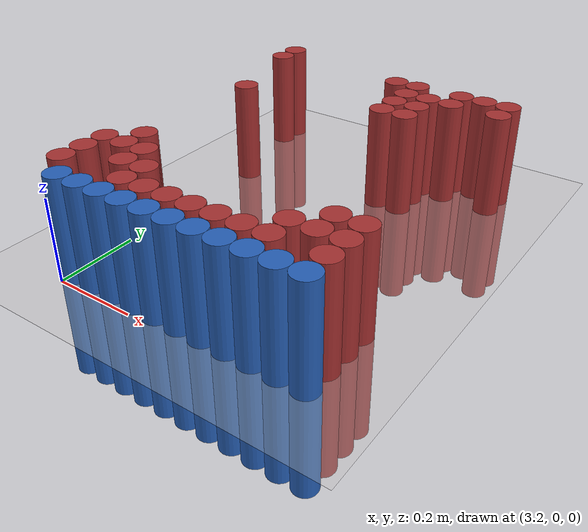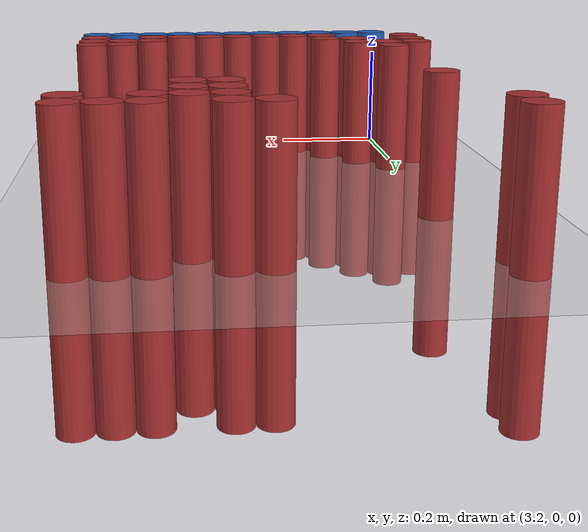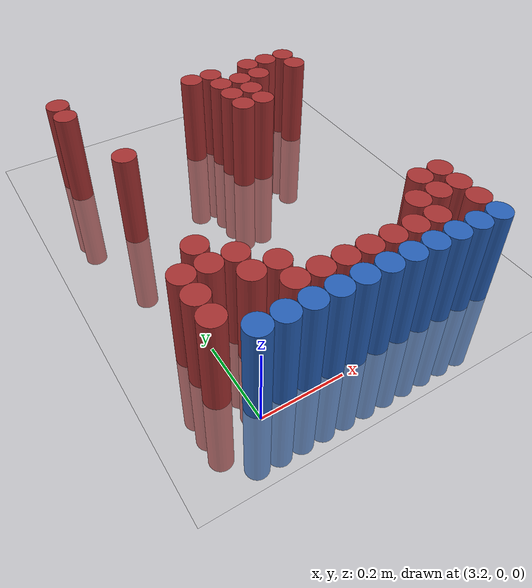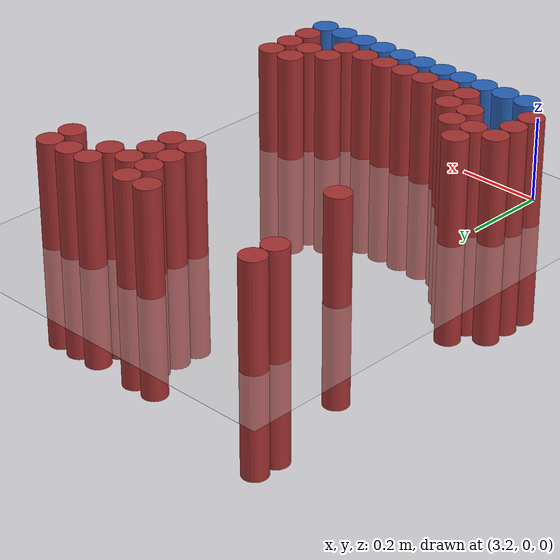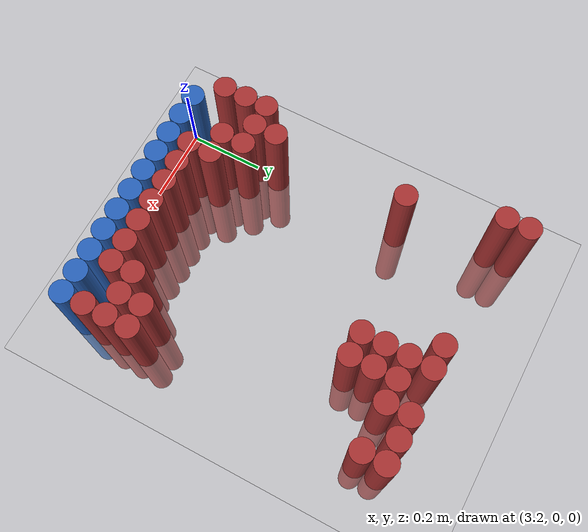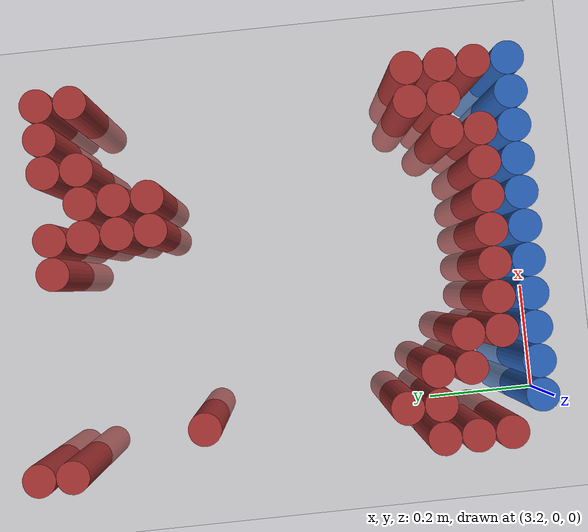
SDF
<sdf version="1.6">
 <world name="default">
  <model name="ground_plane">
   <static>1</static>
   <link name="link">
    <collision name="collision">
     <geometry><plane><normal>0 0 1</normal><size>100 100</size></plane></geometry>
     <surface><friction><ode><mu>100</mu><mu2>50</mu2></ode></friction></surface>
    </collision>
    <visual name="visual">
     <cast_shadows>0</cast_shadows>
     <geometry><plane><normal>0 0 1</normal><size>100 100</size></plane></geometry>
     <material>
      <script><uri>file://media/materials/scripts/gazebo.material</uri><name>Gazebo/Grey</name></script>
     </material>
    </visual>
   </link>
  </model>
  <model name="unit_cylinder_215">
   <static>1</static>
   <pose>3.150000 0.930000 0.000000 0.000000 0.000000 0.000000</pose>
   <link name="link">
    <inertial>
     <mass>1</mass>
     <inertia><ixx>0.145833</ixx><ixy>0</ixy><ixz>0</ixz><iyy>0.145833</iyy><iyz>0</iyz><izz>0.125</izz></inertia>
    </inertial>
    <collision name="collision">
     <geometry><cylinder><radius>0.030000</radius><length>0.5</length></cylinder></geometry>
    </collision>
    <visual name="visual">
     <geometry><cylinder><radius>0.030000</radius><length>0.5</length></cylinder></geometry>
     <material>
      <ambient>0.648000 0.192000 0.192000 1</ambient>
      <diffuse>0.648000 0.192000 0.192000 1</diffuse>
     </material>
     <material>
      <script><name>Gazebo/Grey</name><uri>file://media/materials/scripts/gazebo.material</uri></script>
     </material>
    </visual>
   </link>
  </model>
  <model name="unit_cylinder_225">
   <static>1</static>
   <pose>3.150000 0.870000 0.000000 0.000000 0.000000 0.000000</pose>
   <link name="link">
    <inertial>
     <mass>1</mass>
     <inertia><ixx>0.145833</ixx><ixy>0</ixy><ixz>0</ixz><iyy>0.145833</iyy><iyz>0</iyz><izz>0.125</izz></inertia>
    </inertial>
    <collision name="collision">
     <geometry><cylinder><radius>0.030000</radius><length>0.5</length></cylinder></geometry>
    </collision>
    <visual name="visual">
     <geometry><cylinder><radius>0.030000</radius><length>0.5</length></cylinder></geometry>
     <material>
      <ambient>0.648000 0.192000 0.192000 1</ambient>
      <diffuse>0.648000 0.192000 0.192000 1</diffuse>
     </material>
     <material>
      <script><name>Gazebo/Grey</name><uri>file://media/materials/scripts/gazebo.material</uri></script>
     </material>
    </visual>
   </link>
  </model>
  <model name="unit_cylinder_226">
   <static>1</static>
   <pose>3.510000 0.870000 0.000000 0.000000 0.000000 0.000000</pose>
   <link name="link">
    <inertial>
     <mass>1</mass>
     <inertia><ixx>0.145833</ixx><ixy>0</ixy><ixz>0</ixz><iyy>0.145833</iyy><iyz>0</iyz><izz>0.125</izz></inertia>
    </inertial>
    <collision name="collision">
     <geometry><cylinder><radius>0.030000</radius><length>0.5</length></cylinder></geometry>
    </collision>
    <visual name="visual">
     <geometry><cylinder><radius>0.030000</radius><length>0.5</length></cylinder></geometry>
     <material>
      <ambient>0.648000 0.192000 0.192000 1</ambient>
      <diffuse>0.648000 0.192000 0.192000 1</diffuse>
     </material>
     <material>
      <script><name>Gazebo/Grey</name><uri>file://media/materials/scripts/gazebo.material</uri></script>
     </material>
    </visual>
   </link>
  </model>
  <model name="unit_cylinder_227">
   <static>1</static>
   <pose>3.570000 0.870000 0.000000 0.000000 0.000000 0.000000</pose>
   <link name="link">
    <inertial>
     <mass>1</mass>
     <inertia><ixx>0.145833</ixx><ixy>0</ixy><ixz>0</ixz><iyy>0.145833</iyy><iyz>0</iyz><izz>0.125</izz></inertia>
    </inertial>
    <collision name="collision">
     <geometry><cylinder><radius>0.030000</radius><length>0.5</length></cylinder></geometry>
    </collision>
    <visual name="visual">
     <geometry><cylinder><radius>0.030000</radius><length>0.5</length></cylinder></geometry>
     <material>
      <ambient>0.648000 0.192000 0.192000 1</ambient>
      <diffuse>0.648000 0.192000 0.192000 1</diffuse>
     </material>
     <material>
      <script><name>Gazebo/Grey</name><uri>file://media/materials/scripts/gazebo.material</uri></script>
     </material>
    </visual>
   </link>
  </model>
  <model name="unit_cylinder_228">
   <static>1</static>
   <pose>3.690000 0.870000 0.000000 0.000000 0.000000 0.000000</pose>
   <link name="link">
    <inertial>
     <mass>1</mass>
     <inertia><ixx>0.145833</ixx><ixy>0</ixy><ixz>0</ixz><iyy>0.145833</iyy><iyz>0</iyz><izz>0.125</izz></inertia>
    </inertial>
    <collision name="collision">
     <geometry><cylinder><radius>0.030000</radius><length>0.5</length></cylinder></geometry>
    </collision>
    <visual name="visual">
     <geometry><cylinder><radius>0.030000</radius><length>0.5</length></cylinder></geometry>
     <material>
      <ambient>0.648000 0.192000 0.192000 1</ambient>
      <diffuse>0.648000 0.192000 0.192000 1</diffuse>
     </material>
     <material>
      <script><name>Gazebo/Grey</name><uri>file://media/materials/scripts/gazebo.material</uri></script>
     </material>
    </visual>
   </link>
  </model>
  <model name="unit_cylinder_229">
   <static>1</static>
   <pose>3.750000 0.870000 0.000000 0.000000 0.000000 0.000000</pose>
   <link name="link">
    <inertial>
     <mass>1</mass>
     <inertia><ixx>0.145833</ixx><ixy>0</ixy><ixz>0</ixz><iyy>0.145833</iyy><iyz>0</iyz><izz>0.125</izz></inertia>
    </inertial>
    <collision name="collision">
     <geometry><cylinder><radius>0.030000</radius><length>0.5</length></cylinder></geometry>
    </collision>
    <visual name="visual">
     <geometry><cylinder><radius>0.030000</radius><length>0.5</length></cylinder></geometry>
     <material>
      <ambient>0.648000 0.192000 0.192000 1</ambient>
      <diffuse>0.648000 0.192000 0.192000 1</diffuse>
     </material>
     <material>
      <script><name>Gazebo/Grey</name><uri>file://media/materials/scripts/gazebo.material</uri></script>
     </material>
    </visual>
   </link>
  </model>
  <model name="unit_cylinder_230">
   <static>1</static>
   <pose>3.810000 0.870000 0.000000 0.000000 0.000000 0.000000</pose>
   <link name="link">
    <inertial>
     <mass>1</mass>
     <inertia><ixx>0.145833</ixx><ixy>0</ixy><ixz>0</ixz><iyy>0.145833</iyy><iyz>0</iyz><izz>0.125</izz></inertia>
    </inertial>
    <collision name="collision">
     <geometry><cylinder><radius>0.030000</radius><length>0.5</length></cylinder></geometry>
    </collision>
    <visual name="visual">
     <geometry><cylinder><radius>0.030000</radius><length>0.5</length></cylinder></geometry>
     <material>
      <ambient>0.648000 0.192000 0.192000 1</ambient>
      <diffuse>0.648000 0.192000 0.192000 1</diffuse>
     </material>
     <material>
      <script><name>Gazebo/Grey</name><uri>file://media/materials/scripts/gazebo.material</uri></script>
     </material>
    </visual>
   </link>
  </model>
  <model name="unit_cylinder_240">
   <static>1</static>
   <pose>3.570000 0.810000 0.000000 0.000000 0.000000 0.000000</pose>
   <link name="link">
    <inertial>
     <mass>1</mass>
     <inertia><ixx>0.145833</ixx><ixy>0</ixy><ixz>0</ixz><iyy>0.145833</iyy><iyz>0</iyz><izz>0.125</izz></inertia>
    </inertial>
    <collision name="collision">
     <geometry><cylinder><radius>0.030000</radius><length>0.5</length></cylinder></geometry>
    </collision>
    <visual name="visual">
     <geometry><cylinder><radius>0.030000</radius><length>0.5</length></cylinder></geometry>
     <material>
      <ambient>0.648000 0.192000 0.192000 1</ambient>
      <diffuse>0.648000 0.192000 0.192000 1</diffuse>
     </material>
     <material>
      <script><name>Gazebo/Grey</name><uri>file://media/materials/scripts/gazebo.material</uri></script>
     </material>
    </visual>
   </link>
  </model>
  <model name="unit_cylinder_241">
   <static>1</static>
   <pose>3.630000 0.810000 0.000000 0.000000 0.000000 0.000000</pose>
   <link name="link">
    <inertial>
     <mass>1</mass>
     <inertia><ixx>0.145833</ixx><ixy>0</ixy><ixz>0</ixz><iyy>0.145833</iyy><iyz>0</iyz><izz>0.125</izz></inertia>
    </inertial>
    <collision name="collision">
     <geometry><cylinder><radius>0.030000</radius><length>0.5</length></cylinder></geometry>
    </collision>
    <visual name="visual">
     <geometry><cylinder><radius>0.030000</radius><length>0.5</length></cylinder></geometry>
     <material>
      <ambient>0.648000 0.192000 0.192000 1</ambient>
      <diffuse>0.648000 0.192000 0.192000 1</diffuse>
     </material>
     <material>
      <script><name>Gazebo/Grey</name><uri>file://media/materials/scripts/gazebo.material</uri></script>
     </material>
    </visual>
   </link>
  </model>
  <model name="unit_cylinder_242">
   <static>1</static>
   <pose>3.690000 0.810000 0.000000 0.000000 0.000000 0.000000</pose>
   <link name="link">
    <inertial>
     <mass>1</mass>
     <inertia><ixx>0.145833</ixx><ixy>0</ixy><ixz>0</ixz><iyy>0.145833</iyy><iyz>0</iyz><izz>0.125</izz></inertia>
    </inertial>
    <collision name="collision">
     <geometry><cylinder><radius>0.030000</radius><length>0.5</length></cylinder></geometry>
    </collision>
    <visual name="visual">
     <geometry><cylinder><radius>0.030000</radius><length>0.5</length></cylinder></geometry>
     <material>
      <ambient>0.648000 0.192000 0.192000 1</ambient>
      <diffuse>0.648000 0.192000 0.192000 1</diffuse>
     </material>
     <material>
      <script><name>Gazebo/Grey</name><uri>file://media/materials/scripts/gazebo.material</uri></script>
     </material>
    </visual>
   </link>
  </model>
  <model name="unit_cylinder_243">
   <static>1</static>
   <pose>3.810000 0.810000 0.000000 0.000000 0.000000 0.000000</pose>
   <link name="link">
    <inertial>
     <mass>1</mass>
     <inertia><ixx>0.145833</ixx><ixy>0</ixy><ixz>0</ixz><iyy>0.145833</iyy><iyz>0</iyz><izz>0.125</izz></inertia>
    </inertial>
    <collision name="collision">
     <geometry><cylinder><radius>0.030000</radius><length>0.5</length></cylinder></geometry>
    </collision>
    <visual name="visual">
     <geometry><cylinder><radius>0.030000</radius><length>0.5</length></cylinder></geometry>
     <material>
      <ambient>0.648000 0.192000 0.192000 1</ambient>
      <diffuse>0.648000 0.192000 0.192000 1</diffuse>
     </material>
     <material>
      <script><name>Gazebo/Grey</name><uri>file://media/materials/scripts/gazebo.material</uri></script>
     </material>
    </visual>
   </link>
  </model>
  <model name="unit_cylinder_248">
   <static>1</static>
   <pose>3.570000 0.750000 0.000000 0.000000 0.000000 0.000000</pose>
   <link name="link">
    <inertial>
     <mass>1</mass>
     <inertia><ixx>0.145833</ixx><ixy>0</ixy><ixz>0</ixz><iyy>0.145833</iyy><iyz>0</iyz><izz>0.125</izz></inertia>
    </inertial>
    <collision name="collision">
     <geometry><cylinder><radius>0.030000</radius><length>0.5</length></cylinder></geometry>
    </collision>
    <visual name="visual">
     <geometry><cylinder><radius>0.030000</radius><length>0.5</length></cylinder></geometry>
     <material>
      <ambient>0.648000 0.192000 0.192000 1</ambient>
      <diffuse>0.648000 0.192000 0.192000 1</diffuse>
     </material>
     <material>
      <script><name>Gazebo/Grey</name><uri>file://media/materials/scripts/gazebo.material</uri></script>
     </material>
    </visual>
   </link>
  </model>
  <model name="unit_cylinder_249">
   <static>1</static>
   <pose>3.630000 0.750000 0.000000 0.000000 0.000000 0.000000</pose>
   <link name="link">
    <inertial>
     <mass>1</mass>
     <inertia><ixx>0.145833</ixx><ixy>0</ixy><ixz>0</ixz><iyy>0.145833</iyy><iyz>0</iyz><izz>0.125</izz></inertia>
    </inertial>
    <collision name="collision">
     <geometry><cylinder><radius>0.030000</radius><length>0.5</length></cylinder></geometry>
    </collision>
    <visual name="visual">
     <geometry><cylinder><radius>0.030000</radius><length>0.5</length></cylinder></geometry>
     <material>
      <ambient>0.648000 0.192000 0.192000 1</ambient>
      <diffuse>0.648000 0.192000 0.192000 1</diffuse>
     </material>
     <material>
      <script><name>Gazebo/Grey</name><uri>file://media/materials/scripts/gazebo.material</uri></script>
     </material>
    </visual>
   </link>
  </model>
  <model name="unit_cylinder_256">
   <static>1</static>
   <pose>3.570000 0.690000 0.000000 0.000000 0.000000 0.000000</pose>
   <link name="link">
    <inertial>
     <mass>1</mass>
     <inertia><ixx>0.145833</ixx><ixy>0</ixy><ixz>0</ixz><iyy>0.145833</iyy><iyz>0</iyz><izz>0.125</izz></inertia>
    </inertial>
    <collision name="collision">
     <geometry><cylinder><radius>0.030000</radius><length>0.5</length></cylinder></geometry>
    </collision>
    <visual name="visual">
     <geometry><cylinder><radius>0.030000</radius><length>0.5</length></cylinder></geometry>
     <material>
      <ambient>0.648000 0.192000 0.192000 1</ambient>
      <diffuse>0.648000 0.192000 0.192000 1</diffuse>
     </material>
     <material>
      <script><name>Gazebo/Grey</name><uri>file://media/materials/scripts/gazebo.material</uri></script>
     </material>
    </visual>
   </link>
  </model>
  <model name="unit_cylinder_257">
   <static>1</static>
   <pose>3.630000 0.690000 0.000000 0.000000 0.000000 0.000000</pose>
   <link name="link">
    <inertial>
     <mass>1</mass>
     <inertia><ixx>0.145833</ixx><ixy>0</ixy><ixz>0</ixz><iyy>0.145833</iyy><iyz>0</iyz><izz>0.125</izz></inertia>
    </inertial>
    <collision name="collision">
     <geometry><cylinder><radius>0.030000</radius><length>0.5</length></cylinder></geometry>
    </collision>
    <visual name="visual">
     <geometry><cylinder><radius>0.030000</radius><length>0.5</length></cylinder></geometry>
     <material>
      <ambient>0.648000 0.192000 0.192000 1</ambient>
      <diffuse>0.648000 0.192000 0.192000 1</diffuse>
     </material>
     <material>
      <script><name>Gazebo/Grey</name><uri>file://media/materials/scripts/gazebo.material</uri></script>
     </material>
    </visual>
   </link>
  </model>
  <model name="unit_cylinder_265">
   <static>1</static>
   <pose>3.210000 0.630000 0.000000 0.000000 0.000000 0.000000</pose>
   <link name="link">
    <inertial>
     <mass>1</mass>
     <inertia><ixx>0.145833</ixx><ixy>0</ixy><ixz>0</ixz><iyy>0.145833</iyy><iyz>0</iyz><izz>0.125</izz></inertia>
    </inertial>
    <collision name="collision">
     <geometry><cylinder><radius>0.030000</radius><length>0.5</length></cylinder></geometry>
    </collision>
    <visual name="visual">
     <geometry><cylinder><radius>0.030000</radius><length>0.5</length></cylinder></geometry>
     <material>
      <ambient>0.648000 0.192000 0.192000 1</ambient>
      <diffuse>0.648000 0.192000 0.192000 1</diffuse>
     </material>
     <material>
      <script><name>Gazebo/Grey</name><uri>file://media/materials/scripts/gazebo.material</uri></script>
     </material>
    </visual>
   </link>
  </model>
  <model name="unit_cylinder_270">
   <static>1</static>
   <pose>3.210000 0.270000 0.000000 0.000000 0.000000 0.000000</pose>
   <link name="link">
    <inertial>
     <mass>1</mass>
     <inertia><ixx>0.145833</ixx><ixy>0</ixy><ixz>0</ixz><iyy>0.145833</iyy><iyz>0</iyz><izz>0.125</izz></inertia>
    </inertial>
    <collision name="collision">
     <geometry><cylinder><radius>0.030000</radius><length>0.5</length></cylinder></geometry>
    </collision>
    <visual name="visual">
     <geometry><cylinder><radius>0.030000</radius><length>0.5</length></cylinder></geometry>
     <material>
      <ambient>0.648000 0.192000 0.192000 1</ambient>
      <diffuse>0.648000 0.192000 0.192000 1</diffuse>
     </material>
     <material>
      <script><name>Gazebo/Grey</name><uri>file://media/materials/scripts/gazebo.material</uri></script>
     </material>
    </visual>
   </link>
  </model>
  <model name="unit_cylinder_271">
   <static>1</static>
   <pose>3.150000 0.210000 0.000000 0.000000 0.000000 0.000000</pose>
   <link name="link">
    <inertial>
     <mass>1</mass>
     <inertia><ixx>0.145833</ixx><ixy>0</ixy><ixz>0</ixz><iyy>0.145833</iyy><iyz>0</iyz><izz>0.125</izz></inertia>
    </inertial>
    <collision name="collision">
     <geometry><cylinder><radius>0.030000</radius><length>0.5</length></cylinder></geometry>
    </collision>
    <visual name="visual">
     <geometry><cylinder><radius>0.030000</radius><length>0.5</length></cylinder></geometry>
     <material>
      <ambient>0.648000 0.192000 0.192000 1</ambient>
      <diffuse>0.648000 0.192000 0.192000 1</diffuse>
     </material>
     <material>
      <script><name>Gazebo/Grey</name><uri>file://media/materials/scripts/gazebo.material</uri></script>
     </material>
    </visual>
   </link>
  </model>
  <model name="unit_cylinder_272">
   <static>1</static>
   <pose>3.210000 0.210000 0.000000 0.000000 0.000000 0.000000</pose>
   <link name="link">
    <inertial>
     <mass>1</mass>
     <inertia><ixx>0.145833</ixx><ixy>0</ixy><ixz>0</ixz><iyy>0.145833</iyy><iyz>0</iyz><izz>0.125</izz></inertia>
    </inertial>
    <collision name="collision">
     <geometry><cylinder><radius>0.030000</radius><length>0.5</length></cylinder></geometry>
    </collision>
    <visual name="visual">
     <geometry><cylinder><radius>0.030000</radius><length>0.5</length></cylinder></geometry>
     <material>
      <ambient>0.648000 0.192000 0.192000 1</ambient>
      <diffuse>0.648000 0.192000 0.192000 1</diffuse>
     </material>
     <material>
      <script><name>Gazebo/Grey</name><uri>file://media/materials/scripts/gazebo.material</uri></script>
     </material>
    </visual>
   </link>
  </model>
  <model name="unit_cylinder_273">
   <static>1</static>
   <pose>3.270000 0.210000 0.000000 0.000000 0.000000 0.000000</pose>
   <link name="link">
    <inertial>
     <mass>1</mass>
     <inertia><ixx>0.145833</ixx><ixy>0</ixy><ixz>0</ixz><iyy>0.145833</iyy><iyz>0</iyz><izz>0.125</izz></inertia>
    </inertial>
    <collision name="collision">
     <geometry><cylinder><radius>0.030000</radius><length>0.5</length></cylinder></geometry>
    </collision>
    <visual name="visual">
     <geometry><cylinder><radius>0.030000</radius><length>0.5</length></cylinder></geometry>
     <material>
      <ambient>0.648000 0.192000 0.192000 1</ambient>
      <diffuse>0.648000 0.192000 0.192000 1</diffuse>
     </material>
     <material>
      <script><name>Gazebo/Grey</name><uri>file://media/materials/scripts/gazebo.material</uri></script>
     </material>
    </visual>
   </link>
  </model>
  <model name="unit_cylinder_274">
   <static>1</static>
   <pose>3.750000 0.210000 0.000000 0.000000 0.000000 0.000000</pose>
   <link name="link">
    <inertial>
     <mass>1</mass>
     <inertia><ixx>0.145833</ixx><ixy>0</ixy><ixz>0</ixz><iyy>0.145833</iyy><iyz>0</iyz><izz>0.125</izz></inertia>
    </inertial>
    <collision name="collision">
     <geometry><cylinder><radius>0.030000</radius><length>0.5</length></cylinder></geometry>
    </collision>
    <visual name="visual">
     <geometry><cylinder><radius>0.030000</radius><length>0.5</length></cylinder></geometry>
     <material>
      <ambient>0.648000 0.192000 0.192000 1</ambient>
      <diffuse>0.648000 0.192000 0.192000 1</diffuse>
     </material>
     <material>
      <script><name>Gazebo/Grey</name><uri>file://media/materials/scripts/gazebo.material</uri></script>
     </material>
    </visual>
   </link>
  </model>
  <model name="unit_cylinder_275">
   <static>1</static>
   <pose>3.810000 0.210000 0.000000 0.000000 0.000000 0.000000</pose>
   <link name="link">
    <inertial>
     <mass>1</mass>
     <inertia><ixx>0.145833</ixx><ixy>0</ixy><ixz>0</ixz><iyy>0.145833</iyy><iyz>0</iyz><izz>0.125</izz></inertia>
    </inertial>
    <collision name="collision">
     <geometry><cylinder><radius>0.030000</radius><length>0.5</length></cylinder></geometry>
    </collision>
    <visual name="visual">
     <geometry><cylinder><radius>0.030000</radius><length>0.5</length></cylinder></geometry>
     <material>
      <ambient>0.648000 0.192000 0.192000 1</ambient>
      <diffuse>0.648000 0.192000 0.192000 1</diffuse>
     </material>
     <material>
      <script><name>Gazebo/Grey</name><uri>file://media/materials/scripts/gazebo.material</uri></script>
     </material>
    </visual>
   </link>
  </model>
  <model name="unit_cylinder_277">
   <static>1</static>
   <pose>3.150000 0.150000 0.000000 0.000000 0.000000 0.000000</pose>
   <link name="link">
    <inertial>
     <mass>1</mass>
     <inertia><ixx>0.145833</ixx><ixy>0</ixy><ixz>0</ixz><iyy>0.145833</iyy><iyz>0</iyz><izz>0.125</izz></inertia>
    </inertial>
    <collision name="collision">
     <geometry><cylinder><radius>0.030000</radius><length>0.5</length></cylinder></geometry>
    </collision>
    <visual name="visual">
     <geometry><cylinder><radius>0.030000</radius><length>0.5</length></cylinder></geometry>
     <material>
      <ambient>0.648000 0.192000 0.192000 1</ambient>
      <diffuse>0.648000 0.192000 0.192000 1</diffuse>
     </material>
     <material>
      <script><name>Gazebo/Grey</name><uri>file://media/materials/scripts/gazebo.material</uri></script>
     </material>
    </visual>
   </link>
  </model>
  <model name="unit_cylinder_278">
   <static>1</static>
   <pose>3.270000 0.150000 0.000000 0.000000 0.000000 0.000000</pose>
   <link name="link">
    <inertial>
     <mass>1</mass>
     <inertia><ixx>0.145833</ixx><ixy>0</ixy><ixz>0</ixz><iyy>0.145833</iyy><iyz>0</iyz><izz>0.125</izz></inertia>
    </inertial>
    <collision name="collision">
     <geometry><cylinder><radius>0.030000</radius><length>0.5</length></cylinder></geometry>
    </collision>
    <visual name="visual">
     <geometry><cylinder><radius>0.030000</radius><length>0.5</length></cylinder></geometry>
     <material>
      <ambient>0.648000 0.192000 0.192000 1</ambient>
      <diffuse>0.648000 0.192000 0.192000 1</diffuse>
     </material>
     <material>
      <script><name>Gazebo/Grey</name><uri>file://media/materials/scripts/gazebo.material</uri></script>
     </material>
    </visual>
   </link>
  </model>
  <model name="unit_cylinder_279">
   <static>1</static>
   <pose>3.330000 0.150000 0.000000 0.000000 0.000000 0.000000</pose>
   <link name="link">
    <inertial>
     <mass>1</mass>
     <inertia><ixx>0.145833</ixx><ixy>0</ixy><ixz>0</ixz><iyy>0.145833</iyy><iyz>0</iyz><izz>0.125</izz></inertia>
    </inertial>
    <collision name="collision">
     <geometry><cylinder><radius>0.030000</radius><length>0.5</length></cylinder></geometry>
    </collision>
    <visual name="visual">
     <geometry><cylinder><radius>0.030000</radius><length>0.5</length></cylinder></geometry>
     <material>
      <ambient>0.648000 0.192000 0.192000 1</ambient>
      <diffuse>0.648000 0.192000 0.192000 1</diffuse>
     </material>
     <material>
      <script><name>Gazebo/Grey</name><uri>file://media/materials/scripts/gazebo.material</uri></script>
     </material>
    </visual>
   </link>
  </model>
  <model name="unit_cylinder_280">
   <static>1</static>
   <pose>3.690000 0.150000 0.000000 0.000000 0.000000 0.000000</pose>
   <link name="link">
    <inertial>
     <mass>1</mass>
     <inertia><ixx>0.145833</ixx><ixy>0</ixy><ixz>0</ixz><iyy>0.145833</iyy><iyz>0</iyz><izz>0.125</izz></inertia>
    </inertial>
    <collision name="collision">
     <geometry><cylinder><radius>0.030000</radius><length>0.5</length></cylinder></geometry>
    </collision>
    <visual name="visual">
     <geometry><cylinder><radius>0.030000</radius><length>0.5</length></cylinder></geometry>
     <material>
      <ambient>0.648000 0.192000 0.192000 1</ambient>
      <diffuse>0.648000 0.192000 0.192000 1</diffuse>
     </material>
     <material>
      <script><name>Gazebo/Grey</name><uri>file://media/materials/scripts/gazebo.material</uri></script>
     </material>
    </visual>
   </link>
  </model>
  <model name="unit_cylinder_281">
   <static>1</static>
   <pose>3.750000 0.150000 0.000000 0.000000 0.000000 0.000000</pose>
   <link name="link">
    <inertial>
     <mass>1</mass>
     <inertia><ixx>0.145833</ixx><ixy>0</ixy><ixz>0</ixz><iyy>0.145833</iyy><iyz>0</iyz><izz>0.125</izz></inertia>
    </inertial>
    <collision name="collision">
     <geometry><cylinder><radius>0.030000</radius><length>0.5</length></cylinder></geometry>
    </collision>
    <visual name="visual">
     <geometry><cylinder><radius>0.030000</radius><length>0.5</length></cylinder></geometry>
     <material>
      <ambient>0.648000 0.192000 0.192000 1</ambient>
      <diffuse>0.648000 0.192000 0.192000 1</diffuse>
     </material>
     <material>
      <script><name>Gazebo/Grey</name><uri>file://media/materials/scripts/gazebo.material</uri></script>
     </material>
    </visual>
   </link>
  </model>
  <model name="unit_cylinder_282">
   <static>1</static>
   <pose>3.810000 0.150000 0.000000 0.000000 0.000000 0.000000</pose>
   <link name="link">
    <inertial>
     <mass>1</mass>
     <inertia><ixx>0.145833</ixx><ixy>0</ixy><ixz>0</ixz><iyy>0.145833</iyy><iyz>0</iyz><izz>0.125</izz></inertia>
    </inertial>
    <collision name="collision">
     <geometry><cylinder><radius>0.030000</radius><length>0.5</length></cylinder></geometry>
    </collision>
    <visual name="visual">
     <geometry><cylinder><radius>0.030000</radius><length>0.5</length></cylinder></geometry>
     <material>
      <ambient>0.648000 0.192000 0.192000 1</ambient>
      <diffuse>0.648000 0.192000 0.192000 1</diffuse>
     </material>
     <material>
      <script><name>Gazebo/Grey</name><uri>file://media/materials/scripts/gazebo.material</uri></script>
     </material>
    </visual>
   </link>
  </model>
  <model name="unit_cylinder_295">
   <static>1</static>
   <pose>3.150000 0.090000 0.000000 0.000000 0.000000 0.000000</pose>
   <link name="link">
    <inertial>
     <mass>1</mass>
     <inertia><ixx>0.145833</ixx><ixy>0</ixy><ixz>0</ixz><iyy>0.145833</iyy><iyz>0</iyz><izz>0.125</izz></inertia>
    </inertial>
    <collision name="collision">
     <geometry><cylinder><radius>0.030000</radius><length>0.5</length></cylinder></geometry>
    </collision>
    <visual name="visual">
     <geometry><cylinder><radius>0.030000</radius><length>0.5</length></cylinder></geometry>
     <material>
      <ambient>0.648000 0.192000 0.192000 1</ambient>
      <diffuse>0.648000 0.192000 0.192000 1</diffuse>
     </material>
     <material>
      <script><name>Gazebo/Grey</name><uri>file://media/materials/scripts/gazebo.material</uri></script>
     </material>
    </visual>
   </link>
  </model>
  <model name="unit_cylinder_296">
   <static>1</static>
   <pose>3.330000 0.090000 0.000000 0.000000 0.000000 0.000000</pose>
   <link name="link">
    <inertial>
     <mass>1</mass>
     <inertia><ixx>0.145833</ixx><ixy>0</ixy><ixz>0</ixz><iyy>0.145833</iyy><iyz>0</iyz><izz>0.125</izz></inertia>
    </inertial>
    <collision name="collision">
     <geometry><cylinder><radius>0.030000</radius><length>0.5</length></cylinder></geometry>
    </collision>
    <visual name="visual">
     <geometry><cylinder><radius>0.030000</radius><length>0.5</length></cylinder></geometry>
     <material>
      <ambient>0.648000 0.192000 0.192000 1</ambient>
      <diffuse>0.648000 0.192000 0.192000 1</diffuse>
     </material>
     <material>
      <script><name>Gazebo/Grey</name><uri>file://media/materials/scripts/gazebo.material</uri></script>
     </material>
    </visual>
   </link>
  </model>
  <model name="unit_cylinder_297">
   <static>1</static>
   <pose>3.390000 0.090000 0.000000 0.000000 0.000000 0.000000</pose>
   <link name="link">
    <inertial>
     <mass>1</mass>
     <inertia><ixx>0.145833</ixx><ixy>0</ixy><ixz>0</ixz><iyy>0.145833</iyy><iyz>0</iyz><izz>0.125</izz></inertia>
    </inertial>
    <collision name="collision">
     <geometry><cylinder><radius>0.030000</radius><length>0.5</length></cylinder></geometry>
    </collision>
    <visual name="visual">
     <geometry><cylinder><radius>0.030000</radius><length>0.5</length></cylinder></geometry>
     <material>
      <ambient>0.648000 0.192000 0.192000 1</ambient>
      <diffuse>0.648000 0.192000 0.192000 1</diffuse>
     </material>
     <material>
      <script><name>Gazebo/Grey</name><uri>file://media/materials/scripts/gazebo.material</uri></script>
     </material>
    </visual>
   </link>
  </model>
  <model name="unit_cylinder_298">
   <static>1</static>
   <pose>3.450000 0.090000 0.000000 0.000000 0.000000 0.000000</pose>
   <link name="link">
    <inertial>
     <mass>1</mass>
     <inertia><ixx>0.145833</ixx><ixy>0</ixy><ixz>0</ixz><iyy>0.145833</iyy><iyz>0</iyz><izz>0.125</izz></inertia>
    </inertial>
    <collision name="collision">
     <geometry><cylinder><radius>0.030000</radius><length>0.5</length></cylinder></geometry>
    </collision>
    <visual name="visual">
     <geometry><cylinder><radius>0.030000</radius><length>0.5</length></cylinder></geometry>
     <material>
      <ambient>0.648000 0.192000 0.192000 1</ambient>
      <diffuse>0.648000 0.192000 0.192000 1</diffuse>
     </material>
     <material>
      <script><name>Gazebo/Grey</name><uri>file://media/materials/scripts/gazebo.material</uri></script>
     </material>
    </visual>
   </link>
  </model>
  <model name="unit_cylinder_299">
   <static>1</static>
   <pose>3.510000 0.090000 0.000000 0.000000 0.000000 0.000000</pose>
   <link name="link">
    <inertial>
     <mass>1</mass>
     <inertia><ixx>0.145833</ixx><ixy>0</ixy><ixz>0</ixz><iyy>0.145833</iyy><iyz>0</iyz><izz>0.125</izz></inertia>
    </inertial>
    <collision name="collision">
     <geometry><cylinder><radius>0.030000</radius><length>0.5</length></cylinder></geometry>
    </collision>
    <visual name="visual">
     <geometry><cylinder><radius>0.030000</radius><length>0.5</length></cylinder></geometry>
     <material>
      <ambient>0.648000 0.192000 0.192000 1</ambient>
      <diffuse>0.648000 0.192000 0.192000 1</diffuse>
     </material>
     <material>
      <script><name>Gazebo/Grey</name><uri>file://media/materials/scripts/gazebo.material</uri></script>
     </material>
    </visual>
   </link>
  </model>
  <model name="unit_cylinder_300">
   <static>1</static>
   <pose>3.570000 0.090000 0.000000 0.000000 0.000000 0.000000</pose>
   <link name="link">
    <inertial>
     <mass>1</mass>
     <inertia><ixx>0.145833</ixx><ixy>0</ixy><ixz>0</ixz><iyy>0.145833</iyy><iyz>0</iyz><izz>0.125</izz></inertia>
    </inertial>
    <collision name="collision">
     <geometry><cylinder><radius>0.030000</radius><length>0.5</length></cylinder></geometry>
    </collision>
    <visual name="visual">
     <geometry><cylinder><radius>0.030000</radius><length>0.5</length></cylinder></geometry>
     <material>
      <ambient>0.648000 0.192000 0.192000 1</ambient>
      <diffuse>0.648000 0.192000 0.192000 1</diffuse>
     </material>
     <material>
      <script><name>Gazebo/Grey</name><uri>file://media/materials/scripts/gazebo.material</uri></script>
     </material>
    </visual>
   </link>
  </model>
  <model name="unit_cylinder_301">
   <static>1</static>
   <pose>3.630000 0.090000 0.000000 0.000000 0.000000 0.000000</pose>
   <link name="link">
    <inertial>
     <mass>1</mass>
     <inertia><ixx>0.145833</ixx><ixy>0</ixy><ixz>0</ixz><iyy>0.145833</iyy><iyz>0</iyz><izz>0.125</izz></inertia>
    </inertial>
    <collision name="collision">
     <geometry><cylinder><radius>0.030000</radius><length>0.5</length></cylinder></geometry>
    </collision>
    <visual name="visual">
     <geometry><cylinder><radius>0.030000</radius><length>0.5</length></cylinder></geometry>
     <material>
      <ambient>0.648000 0.192000 0.192000 1</ambient>
      <diffuse>0.648000 0.192000 0.192000 1</diffuse>
     </material>
     <material>
      <script><name>Gazebo/Grey</name><uri>file://media/materials/scripts/gazebo.material</uri></script>
     </material>
    </visual>
   </link>
  </model>
  <model name="unit_cylinder_302">
   <static>1</static>
   <pose>3.690000 0.090000 0.000000 0.000000 0.000000 0.000000</pose>
   <link name="link">
    <inertial>
     <mass>1</mass>
     <inertia><ixx>0.145833</ixx><ixy>0</ixy><ixz>0</ixz><iyy>0.145833</iyy><iyz>0</iyz><izz>0.125</izz></inertia>
    </inertial>
    <collision name="collision">
     <geometry><cylinder><radius>0.030000</radius><length>0.5</length></cylinder></geometry>
    </collision>
    <visual name="visual">
     <geometry><cylinder><radius>0.030000</radius><length>0.5</length></cylinder></geometry>
     <material>
      <ambient>0.648000 0.192000 0.192000 1</ambient>
      <diffuse>0.648000 0.192000 0.192000 1</diffuse>
     </material>
     <material>
      <script><name>Gazebo/Grey</name><uri>file://media/materials/scripts/gazebo.material</uri></script>
     </material>
    </visual>
   </link>
  </model>
  <model name="unit_cylinder_303">
   <static>1</static>
   <pose>3.810000 0.090000 0.000000 0.000000 0.000000 0.000000</pose>
   <link name="link">
    <inertial>
     <mass>1</mass>
     <inertia><ixx>0.145833</ixx><ixy>0</ixy><ixz>0</ixz><iyy>0.145833</iyy><iyz>0</iyz><izz>0.125</izz></inertia>
    </inertial>
    <collision name="collision">
     <geometry><cylinder><radius>0.030000</radius><length>0.5</length></cylinder></geometry>
    </collision>
    <visual name="visual">
     <geometry><cylinder><radius>0.030000</radius><length>0.5</length></cylinder></geometry>
     <material>
      <ambient>0.648000 0.192000 0.192000 1</ambient>
      <diffuse>0.648000 0.192000 0.192000 1</diffuse>
     </material>
     <material>
      <script><name>Gazebo/Grey</name><uri>file://media/materials/scripts/gazebo.material</uri></script>
     </material>
    </visual>
   </link>
  </model>
  <model name="unit_cylinder_323">
   <static>1</static>
   <pose>3.210000 0.030000 0.000000 0.000000 0.000000 0.000000</pose>
   <link name="link">
    <inertial>
     <mass>1</mass>
     <inertia><ixx>0.145833</ixx><ixy>0</ixy><ixz>0</ixz><iyy>0.145833</iyy><iyz>0</iyz><izz>0.125</izz></inertia>
    </inertial>
    <collision name="collision">
     <geometry><cylinder><radius>0.030000</radius><length>0.5</length></cylinder></geometry>
    </collision>
    <visual name="visual">
     <geometry><cylinder><radius>0.030000</radius><length>0.5</length></cylinder></geometry>
     <material>
      <ambient>0.152000 0.379000 0.720000 1</ambient>
      <diffuse>0.152000 0.379000 0.720000 1</diffuse>
     </material>
     <material>
      <script><name>Gazebo/Grey</name><uri>file://media/materials/scripts/gazebo.material</uri></script>
     </material>
    </visual>
   </link>
  </model>
  <model name="unit_cylinder_324">
   <static>1</static>
   <pose>3.270000 0.030000 0.000000 0.000000 0.000000 0.000000</pose>
   <link name="link">
    <inertial>
     <mass>1</mass>
     <inertia><ixx>0.145833</ixx><ixy>0</ixy><ixz>0</ixz><iyy>0.145833</iyy><iyz>0</iyz><izz>0.125</izz></inertia>
    </inertial>
    <collision name="collision">
     <geometry><cylinder><radius>0.030000</radius><length>0.5</length></cylinder></geometry>
    </collision>
    <visual name="visual">
     <geometry><cylinder><radius>0.030000</radius><length>0.5</length></cylinder></geometry>
     <material>
      <ambient>0.152000 0.379000 0.720000 1</ambient>
      <diffuse>0.152000 0.379000 0.720000 1</diffuse>
     </material>
     <material>
      <script><name>Gazebo/Grey</name><uri>file://media/materials/scripts/gazebo.material</uri></script>
     </material>
    </visual>
   </link>
  </model>
  <model name="unit_cylinder_325">
   <static>1</static>
   <pose>3.330000 0.030000 0.000000 0.000000 0.000000 0.000000</pose>
   <link name="link">
    <inertial>
     <mass>1</mass>
     <inertia><ixx>0.145833</ixx><ixy>0</ixy><ixz>0</ixz><iyy>0.145833</iyy><iyz>0</iyz><izz>0.125</izz></inertia>
    </inertial>
    <collision name="collision">
     <geometry><cylinder><radius>0.030000</radius><length>0.5</length></cylinder></geometry>
    </collision>
    <visual name="visual">
     <geometry><cylinder><radius>0.030000</radius><length>0.5</length></cylinder></geometry>
     <material>
      <ambient>0.152000 0.379000 0.720000 1</ambient>
      <diffuse>0.152000 0.379000 0.720000 1</diffuse>
     </material>
     <material>
      <script><name>Gazebo/Grey</name><uri>file://media/materials/scripts/gazebo.material</uri></script>
     </material>
    </visual>
   </link>
  </model>
  <model name="unit_cylinder_326">
   <static>1</static>
   <pose>3.390000 0.030000 0.000000 0.000000 0.000000 0.000000</pose>
   <link name="link">
    <inertial>
     <mass>1</mass>
     <inertia><ixx>0.145833</ixx><ixy>0</ixy><ixz>0</ixz><iyy>0.145833</iyy><iyz>0</iyz><izz>0.125</izz></inertia>
    </inertial>
    <collision name="collision">
     <geometry><cylinder><radius>0.030000</radius><length>0.5</length></cylinder></geometry>
    </collision>
    <visual name="visual">
     <geometry><cylinder><radius>0.030000</radius><length>0.5</length></cylinder></geometry>
     <material>
      <ambient>0.152000 0.379000 0.720000 1</ambient>
      <diffuse>0.152000 0.379000 0.720000 1</diffuse>
     </material>
     <material>
      <script><name>Gazebo/Grey</name><uri>file://media/materials/scripts/gazebo.material</uri></script>
     </material>
    </visual>
   </link>
  </model>
  <model name="unit_cylinder_327">
   <static>1</static>
   <pose>3.450000 0.030000 0.000000 0.000000 0.000000 0.000000</pose>
   <link name="link">
    <inertial>
     <mass>1</mass>
     <inertia><ixx>0.145833</ixx><ixy>0</ixy><ixz>0</ixz><iyy>0.145833</iyy><iyz>0</iyz><izz>0.125</izz></inertia>
    </inertial>
    <collision name="collision">
     <geometry><cylinder><radius>0.030000</radius><length>0.5</length></cylinder></geometry>
    </collision>
    <visual name="visual">
     <geometry><cylinder><radius>0.030000</radius><length>0.5</length></cylinder></geometry>
     <material>
      <ambient>0.152000 0.379000 0.720000 1</ambient>
      <diffuse>0.152000 0.379000 0.720000 1</diffuse>
     </material>
     <material>
      <script><name>Gazebo/Grey</name><uri>file://media/materials/scripts/gazebo.material</uri></script>
     </material>
    </visual>
   </link>
  </model>
  <model name="unit_cylinder_328">
   <static>1</static>
   <pose>3.510000 0.030000 0.000000 0.000000 0.000000 0.000000</pose>
   <link name="link">
    <inertial>
     <mass>1</mass>
     <inertia><ixx>0.145833</ixx><ixy>0</ixy><ixz>0</ixz><iyy>0.145833</iyy><iyz>0</iyz><izz>0.125</izz></inertia>
    </inertial>
    <collision name="collision">
     <geometry><cylinder><radius>0.030000</radius><length>0.5</length></cylinder></geometry>
    </collision>
    <visual name="visual">
     <geometry><cylinder><radius>0.030000</radius><length>0.5</length></cylinder></geometry>
     <material>
      <ambient>0.152000 0.379000 0.720000 1</ambient>
      <diffuse>0.152000 0.379000 0.720000 1</diffuse>
     </material>
     <material>
      <script><name>Gazebo/Grey</name><uri>file://media/materials/scripts/gazebo.material</uri></script>
     </material>
    </visual>
   </link>
  </model>
  <model name="unit_cylinder_329">
   <static>1</static>
   <pose>3.570000 0.030000 0.000000 0.000000 0.000000 0.000000</pose>
   <link name="link">
    <inertial>
     <mass>1</mass>
     <inertia><ixx>0.145833</ixx><ixy>0</ixy><ixz>0</ixz><iyy>0.145833</iyy><iyz>0</iyz><izz>0.125</izz></inertia>
    </inertial>
    <collision name="collision">
     <geometry><cylinder><radius>0.030000</radius><length>0.5</length></cylinder></geometry>
    </collision>
    <visual name="visual">
     <geometry><cylinder><radius>0.030000</radius><length>0.5</length></cylinder></geometry>
     <material>
      <ambient>0.152000 0.379000 0.720000 1</ambient>
      <diffuse>0.152000 0.379000 0.720000 1</diffuse>
     </material>
     <material>
      <script><name>Gazebo/Grey</name><uri>file://media/materials/scripts/gazebo.material</uri></script>
     </material>
    </visual>
   </link>
  </model>
  <model name="unit_cylinder_330">
   <static>1</static>
   <pose>3.630000 0.030000 0.000000 0.000000 0.000000 0.000000</pose>
   <link name="link">
    <inertial>
     <mass>1</mass>
     <inertia><ixx>0.145833</ixx><ixy>0</ixy><ixz>0</ixz><iyy>0.145833</iyy><iyz>0</iyz><izz>0.125</izz></inertia>
    </inertial>
    <collision name="collision">
     <geometry><cylinder><radius>0.030000</radius><length>0.5</length></cylinder></geometry>
    </collision>
    <visual name="visual">
     <geometry><cylinder><radius>0.030000</radius><length>0.5</length></cylinder></geometry>
     <material>
      <ambient>0.152000 0.379000 0.720000 1</ambient>
      <diffuse>0.152000 0.379000 0.720000 1</diffuse>
     </material>
     <material>
      <script><name>Gazebo/Grey</name><uri>file://media/materials/scripts/gazebo.material</uri></script>
     </material>
    </visual>
   </link>
  </model>
  <model name="unit_cylinder_331">
   <static>1</static>
   <pose>3.690000 0.030000 0.000000 0.000000 0.000000 0.000000</pose>
   <link name="link">
    <inertial>
     <mass>1</mass>
     <inertia><ixx>0.145833</ixx><ixy>0</ixy><ixz>0</ixz><iyy>0.145833</iyy><iyz>0</iyz><izz>0.125</izz></inertia>
    </inertial>
    <collision name="collision">
     <geometry><cylinder><radius>0.030000</radius><length>0.5</length></cylinder></geometry>
    </collision>
    <visual name="visual">
     <geometry><cylinder><radius>0.030000</radius><length>0.5</length></cylinder></geometry>
     <material>
      <ambient>0.152000 0.379000 0.720000 1</ambient>
      <diffuse>0.152000 0.379000 0.720000 1</diffuse>
     </material>
     <material>
      <script><name>Gazebo/Grey</name><uri>file://media/materials/scripts/gazebo.material</uri></script>
     </material>
    </visual>
   </link>
  </model>
  <model name="unit_cylinder_332">
   <static>1</static>
   <pose>3.750000 0.030000 0.000000 0.000000 0.000000 0.000000</pose>
   <link name="link">
    <inertial>
     <mass>1</mass>
     <inertia><ixx>0.145833</ixx><ixy>0</ixy><ixz>0</ixz><iyy>0.145833</iyy><iyz>0</iyz><izz>0.125</izz></inertia>
    </inertial>
    <collision name="collision">
     <geometry><cylinder><radius>0.030000</radius><length>0.5</length></cylinder></geometry>
    </collision>
    <visual name="visual">
     <geometry><cylinder><radius>0.030000</radius><length>0.5</length></cylinder></geometry>
     <material>
      <ambient>0.152000 0.379000 0.720000 1</ambient>
      <diffuse>0.152000 0.379000 0.720000 1</diffuse>
     </material>
     <material>
      <script><name>Gazebo/Grey</name><uri>file://media/materials/scripts/gazebo.material</uri></script>
     </material>
    </visual>
   </link>
  </model>
  <model name="unit_cylinder_333">
   <static>1</static>
   <pose>3.810000 0.030000 0.000000 0.000000 0.000000 0.000000</pose>
   <link name="link">
    <inertial>
     <mass>1</mass>
     <inertia><ixx>0.145833</ixx><ixy>0</ixy><ixz>0</ixz><iyy>0.145833</iyy><iyz>0</iyz><izz>0.125</izz></inertia>
    </inertial>
    <collision name="collision">
     <geometry><cylinder><radius>0.030000</radius><length>0.5</length></cylinder></geometry>
    </collision>
    <visual name="visual">
     <geometry><cylinder><radius>0.030000</radius><length>0.5</length></cylinder></geometry>
     <material>
      <ambient>0.152000 0.379000 0.720000 1</ambient>
      <diffuse>0.152000 0.379000 0.720000 1</diffuse>
     </material>
     <material>
      <script><name>Gazebo/Grey</name><uri>file://media/materials/scripts/gazebo.material</uri></script>
     </material>
    </visual>
   </link>
  </model>
 </world>
</sdf>
